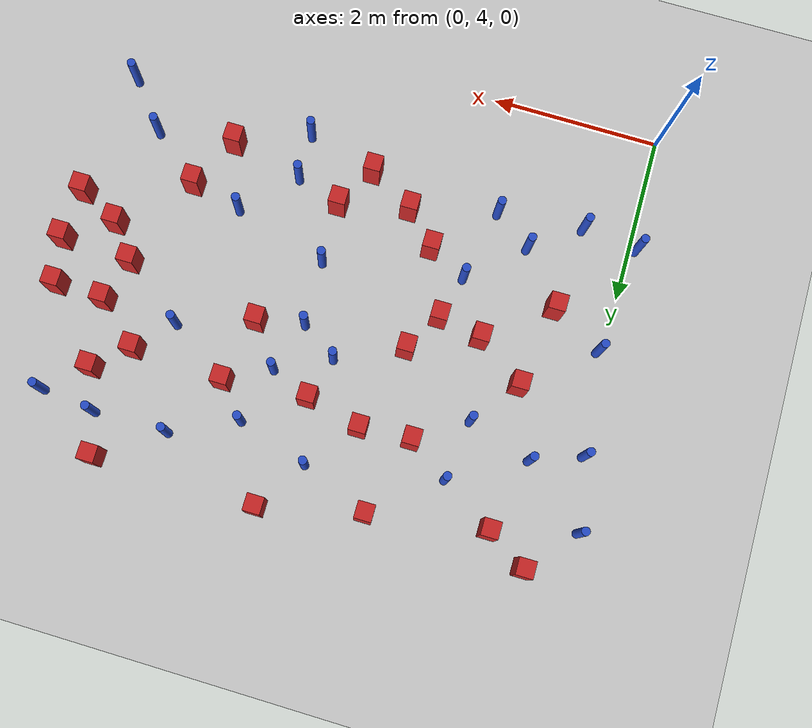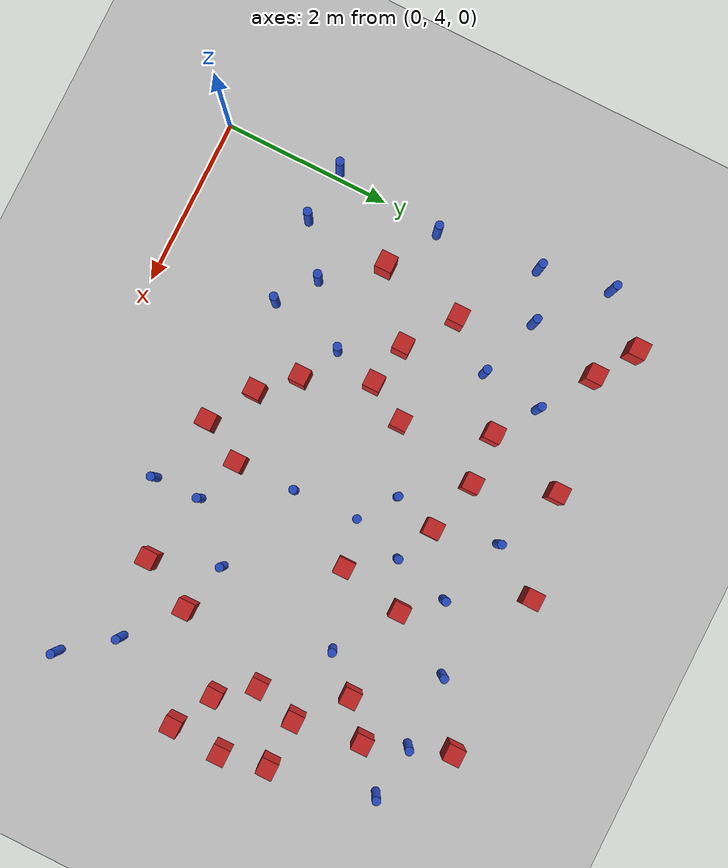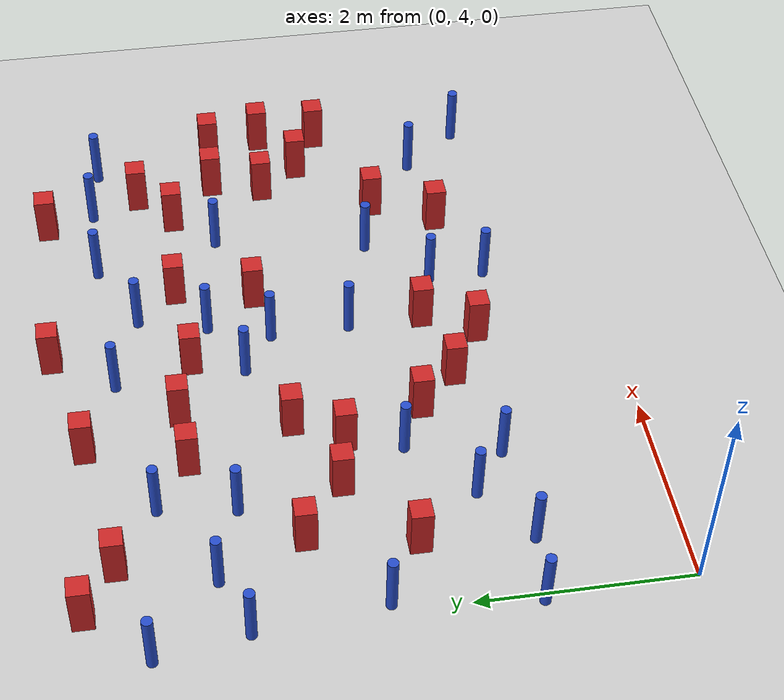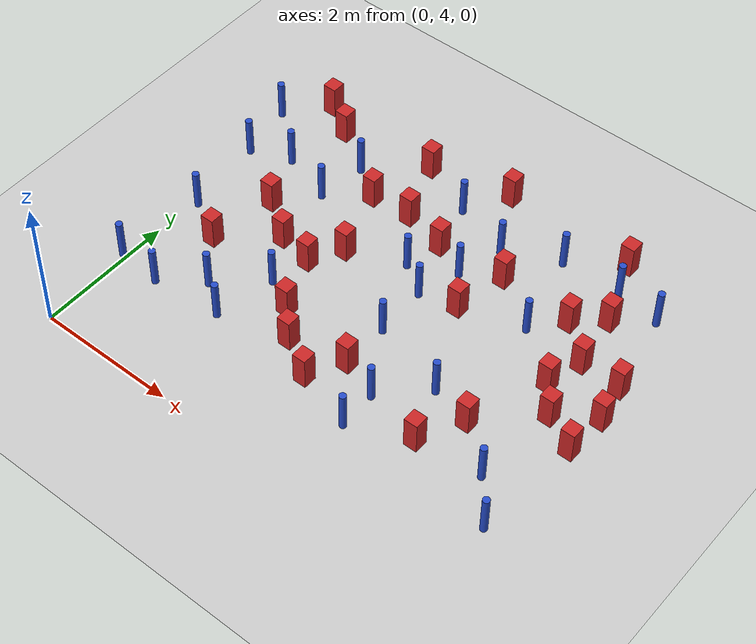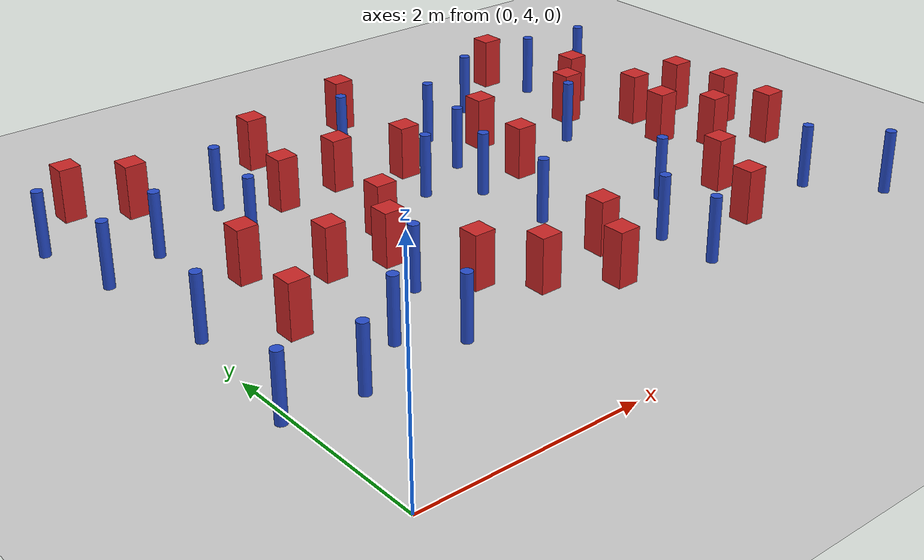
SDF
<sdf version="1.6">
 <world name="default">
  <model name="ground_plane">
   <static>1</static>
   <link name="link">
    <collision name="collision">
     <geometry><plane><normal>0 0 1</normal><size>100 100</size></plane></geometry>
     <surface><friction><ode><mu>100</mu><mu2>50</mu2></ode></friction></surface>
    </collision>
    <visual name="visual">
     <cast_shadows>0</cast_shadows>
     <geometry><plane><normal>0 0 1</normal><size>100 100</size></plane></geometry>
     <material>
      <ambient>1.0 1.0 1.0 1.0</ambient>
      <diffuse>0.8 0.8 0.8 1.0</diffuse>
      <specular>0.01 0.01 0.01 1.000000</specular>
     </material>
    </visual>
   </link>
  </model>
  <model name="pole_obstacle0">
   <static>true</static>
   <pose>5.76128852781 5.56607418223 7.38925637345e-09 -8.47170692796e-08 1.24976764786e-08 -1.74513093032e-07</pose>
   <link name="link">
    <pose>0 0 0.3 0 -0 0</pose>
    <inertial>
     <mass>1</mass>
     <inertia><ixx>0.145833</ixx><ixy>0</ixy><ixz>0</ixz><iyy>0.145833</iyy><iyz>0</iyz><izz>0.125</izz></inertia>
    </inertial>
    <collision name="collision">
     <geometry><cylinder><radius>0.05</radius><length>.6</length></cylinder></geometry>
    </collision>
    <visual name="visual">
     <geometry><cylinder><radius>0.05</radius><length>.6</length></cylinder></geometry>
     <material>
      <script><name>Gazebo/Blue</name><uri>file://media/materials/scripts/gazebo.material</uri></script>
     </material>
    </visual>
   </link>
  </model>
  <model name="pole_obstacle2">
   <static>true</static>
   <pose>0.0751189451723 6.69348405141 7.38925637345e-09 -8.47170692799e-08 1.24976765062e-08 -1.74513093018e-07</pose>
   <link name="link">
    <pose>0 0 0.3 0 -0 0</pose>
    <inertial>
     <mass>1</mass>
     <inertia><ixx>0.145833</ixx><ixy>0</ixy><ixz>0</ixz><iyy>0.145833</iyy><iyz>0</iyz><izz>0.125</izz></inertia>
    </inertial>
    <collision name="collision">
     <geometry><cylinder><radius>0.05</radius><length>.6</length></cylinder></geometry>
    </collision>
    <visual name="visual">
     <geometry><cylinder><radius>0.05</radius><length>.6</length></cylinder></geometry>
     <material>
      <script><name>Gazebo/Blue</name><uri>file://media/materials/scripts/gazebo.material</uri></script>
     </material>
    </visual>
   </link>
  </model>
  <model name="square_post_obstacle7">
   <static>true</static>
   <pose>4.10316415654 8.22295791466 1.91545236811e-07 -7.35059704564e-06 1.12565212e-07 2.39332434364e-05</pose>
   <link name="link">
    <pose>0 0 0.25 0 -0 0</pose>
    <inertial>
     <mass>100</mass>
     <inertia>
      <ixx>0.166667</ixx>
      <ixy>0</ixy>
      <ixz>0</ixz>
      <iyy>0.166667</iyy>
      <iyz>0</iyz>
      <izz>0.166667</izz>
     </inertia>
    </inertial>
    <collision name="collision"><geometry><box><size>.2 .2 .5</size></box></geometry></collision>
    <visual name="visual">
     <geometry><box><size>.2 .2 .5</size></box></geometry>
     <material>
      <script><name>Gazebo/Red</name><uri>file://media/materials/scripts/gazebo.material</uri></script>
     </material>
    </visual>
   </link>
  </model>
  <model name="square_post_obstacle9">
   <static>true</static>
   <pose>4.83220556354 5.45083646995 1.91545236811e-07 -7.35059704564e-06 1.12565212e-07 2.39332434364e-05</pose>
   <link name="link">
    <pose>0 0 0.25 0 -0 0</pose>
    <inertial>
     <mass>100</mass>
     <inertia>
      <ixx>0.166667</ixx>
      <ixy>0</ixy>
      <ixz>0</ixz>
      <iyy>0.166667</iyy>
      <iyz>0</iyz>
      <izz>0.166667</izz>
     </inertia>
    </inertial>
    <collision name="collision"><geometry><box><size>.2 .2 .5</size></box></geometry></collision>
    <visual name="visual">
     <geometry><box><size>.2 .2 .5</size></box></geometry>
     <material>
      <script><name>Gazebo/Red</name><uri>file://media/materials/scripts/gazebo.material</uri></script>
     </material>
    </visual>
   </link>
  </model>
  <model name="square_post_obstacle15">
   <static>true</static>
   <pose>2.46411569563 8.30953991213 1.91545236811e-07 -7.35059704564e-06 1.12565212e-07 2.39332434364e-05</pose>
   <link name="link">
    <pose>0 0 0.25 0 -0 0</pose>
    <inertial>
     <mass>100</mass>
     <inertia>
      <ixx>0.166667</ixx>
      <ixy>0</ixy>
      <ixz>0</ixz>
      <iyy>0.166667</iyy>
      <iyz>0</iyz>
      <izz>0.166667</izz>
     </inertia>
    </inertial>
    <collision name="collision"><geometry><box><size>.2 .2 .5</size></box></geometry></collision>
    <visual name="visual">
     <geometry><box><size>.2 .2 .5</size></box></geometry>
     <material>
      <script><name>Gazebo/Red</name><uri>file://media/materials/scripts/gazebo.material</uri></script>
     </material>
    </visual>
   </link>
  </model>
  <model name="square_post_obstacle16">
   <static>true</static>
   <pose>6.3573693927 6.53001208499 1.91545236811e-07 -7.35059704564e-06 1.12565212e-07 2.39332434364e-05</pose>
   <link name="link">
    <pose>0 0 0.25 0 -0 0</pose>
    <inertial>
     <mass>100</mass>
     <inertia>
      <ixx>0.166667</ixx>
      <ixy>0</ixy>
      <ixz>0</ixz>
      <iyy>0.166667</iyy>
      <iyz>0</iyz>
      <izz>0.166667</izz>
     </inertia>
    </inertial>
    <collision name="collision"><geometry><box><size>.2 .2 .5</size></box></geometry></collision>
    <visual name="visual">
     <geometry><box><size>.2 .2 .5</size></box></geometry>
     <material>
      <script><name>Gazebo/Red</name><uri>file://media/materials/scripts/gazebo.material</uri></script>
     </material>
    </visual>
   </link>
  </model>
  <model name="square_post_obstacle18">
   <static>true</static>
   <pose>0.291771999807 9.30222031321 1.91545236811e-07 -7.35059704564e-06 1.12565212e-07 2.39332434364e-05</pose>
   <link name="link">
    <pose>0 0 0.25 0 -0 0</pose>
    <inertial>
     <mass>100</mass>
     <inertia>
      <ixx>0.166667</ixx>
      <ixy>0</ixy>
      <ixz>0</ixz>
      <iyy>0.166667</iyy>
      <iyz>0</iyz>
      <izz>0.166667</izz>
     </inertia>
    </inertial>
    <collision name="collision"><geometry><box><size>.2 .2 .5</size></box></geometry></collision>
    <visual name="visual">
     <geometry><box><size>.2 .2 .5</size></box></geometry>
     <material>
      <script><name>Gazebo/Red</name><uri>file://media/materials/scripts/gazebo.material</uri></script>
     </material>
    </visual>
   </link>
  </model>
  <model name="square_post_obstacle31">
   <static>true</static>
   <pose>5.14535601493 6.07199148333 1.91545236811e-07 -7.35059704564e-06 1.12565212e-07 2.39332434364e-05</pose>
   <link name="link">
    <pose>0 0 0.25 0 -0 0</pose>
    <inertial>
     <mass>100</mass>
     <inertia>
      <ixx>0.166667</ixx>
      <ixy>0</ixy>
      <ixz>0</ixz>
      <iyy>0.166667</iyy>
      <iyz>0</iyz>
      <izz>0.166667</izz>
     </inertia>
    </inertial>
    <collision name="collision"><geometry><box><size>.2 .2 .5</size></box></geometry></collision>
    <visual name="visual">
     <geometry><box><size>.2 .2 .5</size></box></geometry>
     <material>
      <script><name>Gazebo/Red</name><uri>file://media/materials/scripts/gazebo.material</uri></script>
     </material>
    </visual>
   </link>
  </model>
  <model name="pole_obstacle27">
   <static>true</static>
   <pose>3.42169772487 6.56206708569 7.38925637345e-09 -8.47170692798e-08 1.24976765033e-08 -1.74513093019e-07</pose>
   <link name="link">
    <pose>0 0 0.3 0 -0 0</pose>
    <inertial>
     <mass>1</mass>
     <inertia><ixx>0.145833</ixx><ixy>0</ixy><ixz>0</ixz><iyy>0.145833</iyy><iyz>0</iyz><izz>0.125</izz></inertia>
    </inertial>
    <collision name="collision">
     <geometry><cylinder><radius>0.05</radius><length>.6</length></cylinder></geometry>
    </collision>
    <visual name="visual">
     <geometry><cylinder><radius>0.05</radius><length>.6</length></cylinder></geometry>
     <material>
      <script><name>Gazebo/Blue</name><uri>file://media/materials/scripts/gazebo.material</uri></script>
     </material>
    </visual>
   </link>
  </model>
  <model name="square_post_obstacle34">
   <static>true</static>
   <pose>6.29326271975 7.68353820615 1.91545236811e-07 -7.35059704564e-06 1.12565212e-07 2.39332434364e-05</pose>
   <link name="link">
    <pose>0 0 0.25 0 -0 0</pose>
    <inertial>
     <mass>100</mass>
     <inertia>
      <ixx>0.166667</ixx>
      <ixy>0</ixy>
      <ixz>0</ixz>
      <iyy>0.166667</iyy>
      <iyz>0</iyz>
      <izz>0.166667</izz>
     </inertia>
    </inertial>
    <collision name="collision"><geometry><box><size>.2 .2 .5</size></box></geometry></collision>
    <visual name="visual">
     <geometry><box><size>.2 .2 .5</size></box></geometry>
     <material>
      <script><name>Gazebo/Red</name><uri>file://media/materials/scripts/gazebo.material</uri></script>
     </material>
    </visual>
   </link>
  </model>
  <model name="pole_obstacle30">
   <static>true</static>
   <pose>-0.0682992994698 5.38502403464 7.38925637345e-09 -8.471706928e-08 1.24976765084e-08 -1.74513093017e-07</pose>
   <link name="link">
    <pose>0 0 0.3 0 -0 0</pose>
    <inertial>
     <mass>1</mass>
     <inertia><ixx>0.145833</ixx><ixy>0</ixy><ixz>0</ixz><iyy>0.145833</iyy><iyz>0</iyz><izz>0.125</izz></inertia>
    </inertial>
    <collision name="collision">
     <geometry><cylinder><radius>0.05</radius><length>.6</length></cylinder></geometry>
    </collision>
    <visual name="visual">
     <geometry><cylinder><radius>0.05</radius><length>.6</length></cylinder></geometry>
     <material>
      <script><name>Gazebo/Blue</name><uri>file://media/materials/scripts/gazebo.material</uri></script>
     </material>
    </visual>
   </link>
  </model>
  <model name="pole_obstacle44">
   <static>true</static>
   <pose>3.99302795289 5.09321217439 7.38925637345e-09 -8.47170692798e-08 1.24976764915e-08 -1.74513093026e-07</pose>
   <link name="link">
    <pose>0 0 0.3 0 -0 0</pose>
    <inertial>
     <mass>1</mass>
     <inertia><ixx>0.145833</ixx><ixy>0</ixy><ixz>0</ixz><iyy>0.145833</iyy><iyz>0</iyz><izz>0.125</izz></inertia>
    </inertial>
    <collision name="collision">
     <geometry><cylinder><radius>0.05</radius><length>.6</length></cylinder></geometry>
    </collision>
    <visual name="visual">
     <geometry><cylinder><radius>0.05</radius><length>.6</length></cylinder></geometry>
     <material>
      <script><name>Gazebo/Blue</name><uri>file://media/materials/scripts/gazebo.material</uri></script>
     </material>
    </visual>
   </link>
  </model>
  <model name="square_post_obstacle44">
   <static>true</static>
   <pose>2.24640377928 6.04788490273 1.91545236811e-07 -7.35059704564e-06 1.12565212e-07 2.39332434364e-05</pose>
   <link name="link">
    <pose>0 0 0.25 0 -0 0</pose>
    <inertial>
     <mass>100</mass>
     <inertia>
      <ixx>0.166667</ixx>
      <ixy>0</ixy>
      <ixz>0</ixz>
      <iyy>0.166667</iyy>
      <iyz>0</iyz>
      <izz>0.166667</izz>
     </inertia>
    </inertial>
    <collision name="collision"><geometry><box><size>.2 .2 .5</size></box></geometry></collision>
    <visual name="visual">
     <geometry><box><size>.2 .2 .5</size></box></geometry>
     <material>
      <script><name>Gazebo/Red</name><uri>file://media/materials/scripts/gazebo.material</uri></script>
     </material>
    </visual>
   </link>
  </model>
  <model name="pole_obstacle52">
   <static>true</static>
   <pose>-0.211108417461 8.75379830106 7.38925637345e-09 -8.47170692796e-08 1.24976764767e-08 -1.74513093034e-07</pose>
   <link name="link">
    <pose>0 0 0.3 0 -0 0</pose>
    <inertial>
     <mass>1</mass>
     <inertia><ixx>0.145833</ixx><ixy>0</ixy><ixz>0</ixz><iyy>0.145833</iyy><iyz>0</iyz><izz>0.125</izz></inertia>
    </inertial>
    <collision name="collision">
     <geometry><cylinder><radius>0.05</radius><length>.6</length></cylinder></geometry>
    </collision>
    <visual name="visual">
     <geometry><cylinder><radius>0.05</radius><length>.6</length></cylinder></geometry>
     <material>
      <script><name>Gazebo/Blue</name><uri>file://media/materials/scripts/gazebo.material</uri></script>
     </material>
    </visual>
   </link>
  </model>
  <model name="pole_obstacle68">
   <static>true</static>
   <pose>6.22227778418 5.00015274147 7.38925637345e-09 -8.47170692796e-08 1.24976764786e-08 -1.74513093032e-07</pose>
   <link name="link">
    <pose>0 0 0.3 0 -0 0</pose>
    <inertial>
     <mass>1</mass>
     <inertia><ixx>0.145833</ixx><ixy>0</ixy><ixz>0</ixz><iyy>0.145833</iyy><iyz>0</iyz><izz>0.125</izz></inertia>
    </inertial>
    <collision name="collision">
     <geometry><cylinder><radius>0.05</radius><length>.6</length></cylinder></geometry>
    </collision>
    <visual name="visual">
     <geometry><cylinder><radius>0.05</radius><length>.6</length></cylinder></geometry>
     <material>
      <script><name>Gazebo/Blue</name><uri>file://media/materials/scripts/gazebo.material</uri></script>
     </material>
    </visual>
   </link>
  </model>
  <model name="pole_obstacle69">
   <static>true</static>
   <pose>1.60723801786 5.40578053974 7.38925637345e-09 -8.47170692799e-08 1.24976765033e-08 -1.74513093018e-07</pose>
   <link name="link">
    <pose>0 0 0.3 0 -0 0</pose>
    <inertial>
     <mass>1</mass>
     <inertia><ixx>0.145833</ixx><ixy>0</ixy><ixz>0</ixz><iyy>0.145833</iyy><iyz>0</iyz><izz>0.125</izz></inertia>
    </inertial>
    <collision name="collision">
     <geometry><cylinder><radius>0.05</radius><length>.6</length></cylinder></geometry>
    </collision>
    <visual name="visual">
     <geometry><cylinder><radius>0.05</radius><length>.6</length></cylinder></geometry>
     <material>
      <script><name>Gazebo/Blue</name><uri>file://media/materials/scripts/gazebo.material</uri></script>
     </material>
    </visual>
   </link>
  </model>
  <model name="pole_obstacle72">
   <static>true</static>
   <pose>1.16589366603 5.72822567329 7.38925637345e-09 -8.47170692799e-08 1.24976765033e-08 -1.74513093018e-07</pose>
   <link name="link">
    <pose>0 0 0.3 0 -0 0</pose>
    <inertial>
     <mass>1</mass>
     <inertia><ixx>0.145833</ixx><ixy>0</ixy><ixz>0</ixz><iyy>0.145833</iyy><iyz>0</iyz><izz>0.125</izz></inertia>
    </inertial>
    <collision name="collision">
     <geometry><cylinder><radius>0.05</radius><length>.6</length></cylinder></geometry>
    </collision>
    <visual name="visual">
     <geometry><cylinder><radius>0.05</radius><length>.6</length></cylinder></geometry>
     <material>
      <script><name>Gazebo/Blue</name><uri>file://media/materials/scripts/gazebo.material</uri></script>
     </material>
    </visual>
   </link>
  </model>
  <model name="square_post_obstacle77">
   <static>true</static>
   <pose>0.85280260007 7.3304968766 1.91545236811e-07 -7.35059704564e-06 1.12565212e-07 2.39332434364e-05</pose>
   <link name="link">
    <pose>0 0 0.25 0 -0 0</pose>
    <inertial>
     <mass>100</mass>
     <inertia>
      <ixx>0.166667</ixx>
      <ixy>0</ixy>
      <ixz>0</ixz>
      <iyy>0.166667</iyy>
      <iyz>0</iyz>
      <izz>0.166667</izz>
     </inertia>
    </inertial>
    <collision name="collision"><geometry><box><size>.2 .2 .5</size></box></geometry></collision>
    <visual name="visual">
     <geometry><box><size>.2 .2 .5</size></box></geometry>
     <material>
      <script><name>Gazebo/Red</name><uri>file://media/materials/scripts/gazebo.material</uri></script>
     </material>
    </visual>
   </link>
  </model>
  <model name="pole_obstacle82">
   <static>true</static>
   <pose>4.53029374698 8.97616509681 7.38925637345e-09 -8.471706928e-08 1.24976765081e-08 -1.74513093015e-07</pose>
   <link name="link">
    <pose>0 0 0.3 0 -0 0</pose>
    <inertial>
     <mass>1</mass>
     <inertia><ixx>0.145833</ixx><ixy>0</ixy><ixz>0</ixz><iyy>0.145833</iyy><iyz>0</iyz><izz>0.125</izz></inertia>
    </inertial>
    <collision name="collision">
     <geometry><cylinder><radius>0.05</radius><length>.6</length></cylinder></geometry>
    </collision>
    <visual name="visual">
     <geometry><cylinder><radius>0.05</radius><length>.6</length></cylinder></geometry>
     <material>
      <script><name>Gazebo/Blue</name><uri>file://media/materials/scripts/gazebo.material</uri></script>
     </material>
    </visual>
   </link>
  </model>
  <model name="pole_obstacle96">
   <static>true</static>
   <pose>3.97979917331 5.65232760509 7.38925637345e-09 -8.47170692798e-08 1.24976764915e-08 -1.74513093026e-07</pose>
   <link name="link">
    <pose>0 0 0.3 0 -0 0</pose>
    <inertial>
     <mass>1</mass>
     <inertia><ixx>0.145833</ixx><ixy>0</ixy><ixz>0</ixz><iyy>0.145833</iyy><iyz>0</iyz><izz>0.125</izz></inertia>
    </inertial>
    <collision name="collision">
     <geometry><cylinder><radius>0.05</radius><length>.6</length></cylinder></geometry>
    </collision>
    <visual name="visual">
     <geometry><cylinder><radius>0.05</radius><length>.6</length></cylinder></geometry>
     <material>
      <script><name>Gazebo/Blue</name><uri>file://media/materials/scripts/gazebo.material</uri></script>
     </material>
    </visual>
   </link>
  </model>
  <model name="square_post_obstacle87">
   <static>true</static>
   <pose>0.682684380117 6.34291749218 1.91545236811e-07 -7.35059704564e-06 1.12565212e-07 2.39332434364e-05</pose>
   <link name="link">
    <pose>0 0 0.25 0 -0 0</pose>
    <inertial>
     <mass>100</mass>
     <inertia>
      <ixx>0.166667</ixx>
      <ixy>0</ixy>
      <ixz>0</ixz>
      <iyy>0.166667</iyy>
      <iyz>0</iyz>
      <izz>0.166667</izz>
     </inertia>
    </inertial>
    <collision name="collision"><geometry><box><size>.2 .2 .5</size></box></geometry></collision>
    <visual name="visual">
     <geometry><box><size>.2 .2 .5</size></box></geometry>
     <material>
      <script><name>Gazebo/Red</name><uri>file://media/materials/scripts/gazebo.material</uri></script>
     </material>
    </visual>
   </link>
  </model>
  <model name="pole_obstacle100">
   <static>true</static>
   <pose>3.3953193528 7.33643980055 7.38925637345e-09 -8.47170692798e-08 1.24976765033e-08 -1.74513093019e-07</pose>
   <link name="link">
    <pose>0 0 0.3 0 -0 0</pose>
    <inertial>
     <mass>1</mass>
     <inertia><ixx>0.145833</ixx><ixy>0</ixy><ixz>0</ixz><iyy>0.145833</iyy><iyz>0</iyz><izz>0.125</izz></inertia>
    </inertial>
    <collision name="collision">
     <geometry><cylinder><radius>0.05</radius><length>.6</length></cylinder></geometry>
    </collision>
    <visual name="visual">
     <geometry><cylinder><radius>0.05</radius><length>.6</length></cylinder></geometry>
     <material>
      <script><name>Gazebo/Blue</name><uri>file://media/materials/scripts/gazebo.material</uri></script>
     </material>
    </visual>
   </link>
  </model>
  <model name="pole_obstacle103">
   <static>true</static>
   <pose>6.04791954776 8.90420454646 7.38925637345e-09 -8.471706928e-08 1.24976765081e-08 -1.74513093015e-07</pose>
   <link name="link">
    <pose>0 0 0.3 0 -0 0</pose>
    <inertial>
     <mass>1</mass>
     <inertia><ixx>0.145833</ixx><ixy>0</ixy><ixz>0</ixz><iyy>0.145833</iyy><iyz>0</iyz><izz>0.125</izz></inertia>
    </inertial>
    <collision name="collision">
     <geometry><cylinder><radius>0.05</radius><length>.6</length></cylinder></geometry>
    </collision>
    <visual name="visual">
     <geometry><cylinder><radius>0.05</radius><length>.6</length></cylinder></geometry>
     <material>
      <script><name>Gazebo/Blue</name><uri>file://media/materials/scripts/gazebo.material</uri></script>
     </material>
    </visual>
   </link>
  </model>
  <model name="square_post_obstacle94">
   <static>true</static>
   <pose>3.94307932074 7.45140852487 1.91545236811e-07 -7.35059704564e-06 1.12565212e-07 2.39332434364e-05</pose>
   <link name="link">
    <pose>0 0 0.25 0 -0 0</pose>
    <inertial>
     <mass>100</mass>
     <inertia>
      <ixx>0.166667</ixx>
      <ixy>0</ixy>
      <ixz>0</ixz>
      <iyy>0.166667</iyy>
      <iyz>0</iyz>
      <izz>0.166667</izz>
     </inertia>
    </inertial>
    <collision name="collision"><geometry><box><size>.2 .2 .5</size></box></geometry></collision>
    <visual name="visual">
     <geometry><box><size>.2 .2 .5</size></box></geometry>
     <material>
      <script><name>Gazebo/Red</name><uri>file://media/materials/scripts/gazebo.material</uri></script>
     </material>
    </visual>
   </link>
  </model>
  <model name="square_post_obstacle106">
   <static>true</static>
   <pose>2.19846030514 7.28143949949 1.91545236811e-07 -7.35059704564e-06 1.12565212e-07 2.39332434364e-05</pose>
   <link name="link">
    <pose>0 0 0.25 0 -0 0</pose>
    <inertial>
     <mass>100</mass>
     <inertia>
      <ixx>0.166667</ixx>
      <ixy>0</ixy>
      <ixz>0</ixz>
      <iyy>0.166667</iyy>
      <iyz>0</iyz>
      <izz>0.166667</izz>
     </inertia>
    </inertial>
    <collision name="collision"><geometry><box><size>.2 .2 .5</size></box></geometry></collision>
    <visual name="visual">
     <geometry><box><size>.2 .2 .5</size></box></geometry>
     <material>
      <script><name>Gazebo/Red</name><uri>file://media/materials/scripts/gazebo.material</uri></script>
     </material>
    </visual>
   </link>
  </model>
  <model name="pole_obstacle132">
   <static>true</static>
   <pose>4.5471626173 6.22594026169 7.38925637345e-09 -8.47170692796e-08 1.24976764786e-08 -1.74513093032e-07</pose>
   <link name="link">
    <pose>0 0 0.3 0 -0 0</pose>
    <inertial>
     <mass>1</mass>
     <inertia><ixx>0.145833</ixx><ixy>0</ixy><ixz>0</ixz><iyy>0.145833</iyy><iyz>0</iyz><izz>0.125</izz></inertia>
    </inertial>
    <collision name="collision">
     <geometry><cylinder><radius>0.05</radius><length>.6</length></cylinder></geometry>
    </collision>
    <visual name="visual">
     <geometry><cylinder><radius>0.05</radius><length>.6</length></cylinder></geometry>
     <material>
      <script><name>Gazebo/Blue</name><uri>file://media/materials/scripts/gazebo.material</uri></script>
     </material>
    </visual>
   </link>
  </model>
  <model name="square_post_obstacle115">
   <static>true</static>
   <pose>3.11151601661 8.14394241315 1.91545236811e-07 -7.35059704564e-06 1.12565212e-07 2.39332434364e-05</pose>
   <link name="link">
    <pose>0 0 0.25 0 -0 0</pose>
    <inertial>
     <mass>100</mass>
     <inertia>
      <ixx>0.166667</ixx>
      <ixy>0</ixy>
      <ixz>0</ixz>
      <iyy>0.166667</iyy>
      <iyz>0</iyz>
      <izz>0.166667</izz>
     </inertia>
    </inertial>
    <collision name="collision"><geometry><box><size>.2 .2 .5</size></box></geometry></collision>
    <visual name="visual">
     <geometry><box><size>.2 .2 .5</size></box></geometry>
     <material>
      <script><name>Gazebo/Red</name><uri>file://media/materials/scripts/gazebo.material</uri></script>
     </material>
    </visual>
   </link>
  </model>
  <model name="pole_obstacle139">
   <static>true</static>
   <pose>0.519294932014 8.12801999127 7.38925637345e-09 -8.47170692797e-08 1.24976764765e-08 -1.74513093034e-07</pose>
   <link name="link">
    <pose>0 0 0.3 0 -0 0</pose>
    <inertial>
     <mass>1</mass>
     <inertia><ixx>0.145833</ixx><ixy>0</ixy><ixz>0</ixz><iyy>0.145833</iyy><iyz>0</iyz><izz>0.125</izz></inertia>
    </inertial>
    <collision name="collision">
     <geometry><cylinder><radius>0.05</radius><length>.6</length></cylinder></geometry>
    </collision>
    <visual name="visual">
     <geometry><cylinder><radius>0.05</radius><length>.6</length></cylinder></geometry>
     <material>
      <script><name>Gazebo/Blue</name><uri>file://media/materials/scripts/gazebo.material</uri></script>
     </material>
    </visual>
   </link>
  </model>
  <model name="square_post_obstacle129">
   <static>true</static>
   <pose>5.70563237857 7.70838193958 1.91545236811e-07 -7.35059704564e-06 1.12565212e-07 2.39332434364e-05</pose>
   <link name="link">
    <pose>0 0 0.25 0 -0 0</pose>
    <inertial>
     <mass>100</mass>
     <inertia>
      <ixx>0.166667</ixx>
      <ixy>0</ixy>
      <ixz>0</ixz>
      <iyy>0.166667</iyy>
      <iyz>0</iyz>
      <izz>0.166667</izz>
     </inertia>
    </inertial>
    <collision name="collision"><geometry><box><size>.2 .2 .5</size></box></geometry></collision>
    <visual name="visual">
     <geometry><box><size>.2 .2 .5</size></box></geometry>
     <material>
      <script><name>Gazebo/Red</name><uri>file://media/materials/scripts/gazebo.material</uri></script>
     </material>
    </visual>
   </link>
  </model>
  <model name="square_post_obstacle133">
   <static>true</static>
   <pose>3.43366580866 5.83981058334 1.91545236811e-07 -7.35059704564e-06 1.12565212e-07 2.39332434364e-05</pose>
   <link name="link">
    <pose>0 0 0.25 0 -0 0</pose>
    <inertial>
     <mass>100</mass>
     <inertia>
      <ixx>0.166667</ixx>
      <ixy>0</ixy>
      <ixz>0</ixz>
      <iyy>0.166667</iyy>
      <iyz>0</iyz>
      <izz>0.166667</izz>
     </inertia>
    </inertial>
    <collision name="collision"><geometry><box><size>.2 .2 .5</size></box></geometry></collision>
    <visual name="visual">
     <geometry><box><size>.2 .2 .5</size></box></geometry>
     <material>
      <script><name>Gazebo/Red</name><uri>file://media/materials/scripts/gazebo.material</uri></script>
     </material>
    </visual>
   </link>
  </model>
  <model name="pole_obstacle144">
   <static>true</static>
   <pose>-0.0593687090608 7.90791928932 7.38925637345e-09 -8.47170692799e-08 1.24976765086e-08 -1.74513093017e-07</pose>
   <link name="link">
    <pose>0 0 0.3 0 -0 0</pose>
    <inertial>
     <mass>1</mass>
     <inertia><ixx>0.145833</ixx><ixy>0</ixy><ixz>0</ixz><iyy>0.145833</iyy><iyz>0</iyz><izz>0.125</izz></inertia>
    </inertial>
    <collision name="collision">
     <geometry><cylinder><radius>0.05</radius><length>.6</length></cylinder></geometry>
    </collision>
    <visual name="visual">
     <geometry><cylinder><radius>0.05</radius><length>.6</length></cylinder></geometry>
     <material>
      <script><name>Gazebo/Blue</name><uri>file://media/materials/scripts/gazebo.material</uri></script>
     </material>
    </visual>
   </link>
  </model>
  <model name="square_post_obstacle134">
   <static>true</static>
   <pose>1.93615883682 6.81960525769 1.91545236811e-07 -7.35059704564e-06 1.12565212e-07 2.39332434364e-05</pose>
   <link name="link">
    <pose>0 0 0.25 0 -0 0</pose>
    <inertial>
     <mass>100</mass>
     <inertia>
      <ixx>0.166667</ixx>
      <ixy>0</ixy>
      <ixz>0</ixz>
      <iyy>0.166667</iyy>
      <iyz>0</iyz>
      <izz>0.166667</izz>
     </inertia>
    </inertial>
    <collision name="collision"><geometry><box><size>.2 .2 .5</size></box></geometry></collision>
    <visual name="visual">
     <geometry><box><size>.2 .2 .5</size></box></geometry>
     <material>
      <script><name>Gazebo/Red</name><uri>file://media/materials/scripts/gazebo.material</uri></script>
     </material>
    </visual>
   </link>
  </model>
  <model name="square_post_obstacle137">
   <static>true</static>
   <pose>3.31526058467 9.48041789392 1.91545236811e-07 -7.35059704564e-06 1.12565212e-07 2.39332434364e-05</pose>
   <link name="link">
    <pose>0 0 0.25 0 -0 0</pose>
    <inertial>
     <mass>100</mass>
     <inertia>
      <ixx>0.166667</ixx>
      <ixy>0</ixy>
      <ixz>0</ixz>
      <iyy>0.166667</iyy>
      <iyz>0</iyz>
      <izz>0.166667</izz>
     </inertia>
    </inertial>
    <collision name="collision"><geometry><box><size>.2 .2 .5</size></box></geometry></collision>
    <visual name="visual">
     <geometry><box><size>.2 .2 .5</size></box></geometry>
     <material>
      <script><name>Gazebo/Red</name><uri>file://media/materials/scripts/gazebo.material</uri></script>
     </material>
    </visual>
   </link>
  </model>
  <model name="square_post_obstacle140">
   <static>true</static>
   <pose>2.61641990499 5.66529505028 1.91545236811e-07 -7.35059704564e-06 1.12565212e-07 2.39332434364e-05</pose>
   <link name="link">
    <pose>0 0 0.25 0 -0 0</pose>
    <inertial>
     <mass>100</mass>
     <inertia>
      <ixx>0.166667</ixx>
      <ixy>0</ixy>
      <ixz>0</ixz>
      <iyy>0.166667</iyy>
      <iyz>0</iyz>
      <izz>0.166667</izz>
     </inertia>
    </inertial>
    <collision name="collision"><geometry><box><size>.2 .2 .5</size></box></geometry></collision>
    <visual name="visual">
     <geometry><box><size>.2 .2 .5</size></box></geometry>
     <material>
      <script><name>Gazebo/Red</name><uri>file://media/materials/scripts/gazebo.material</uri></script>
     </material>
    </visual>
   </link>
  </model>
  <model name="pole_obstacle149">
   <static>true</static>
   <pose>1.79020988053 6.28692920211 7.38925637345e-09 -8.47170692799e-08 1.24976765033e-08 -1.74513093018e-07</pose>
   <link name="link">
    <pose>0 0 0.3 0 -0 0</pose>
    <inertial>
     <mass>1</mass>
     <inertia><ixx>0.145833</ixx><ixy>0</ixy><ixz>0</ixz><iyy>0.145833</iyy><iyz>0</iyz><izz>0.125</izz></inertia>
    </inertial>
    <collision name="collision">
     <geometry><cylinder><radius>0.05</radius><length>.6</length></cylinder></geometry>
    </collision>
    <visual name="visual">
     <geometry><cylinder><radius>0.05</radius><length>.6</length></cylinder></geometry>
     <material>
      <script><name>Gazebo/Blue</name><uri>file://media/materials/scripts/gazebo.material</uri></script>
     </material>
    </visual>
   </link>
  </model>
  <model name="pole_obstacle154">
   <static>true</static>
   <pose>3.76764204558 8.61747934037 7.38925637345e-09 -8.47170692793e-08 1.24976764408e-08 -1.74513093041e-07</pose>
   <link name="link">
    <pose>0 0 0.3 0 -0 0</pose>
    <inertial>
     <mass>1</mass>
     <inertia><ixx>0.145833</ixx><ixy>0</ixy><ixz>0</ixz><iyy>0.145833</iyy><iyz>0</iyz><izz>0.125</izz></inertia>
    </inertial>
    <collision name="collision">
     <geometry><cylinder><radius>0.05</radius><length>.6</length></cylinder></geometry>
    </collision>
    <visual name="visual">
     <geometry><cylinder><radius>0.05</radius><length>.6</length></cylinder></geometry>
     <material>
      <script><name>Gazebo/Blue</name><uri>file://media/materials/scripts/gazebo.material</uri></script>
     </material>
    </visual>
   </link>
  </model>
  <model name="square_post_obstacle160">
   <static>true</static>
   <pose>5.23786854367 9.45898043772 1.91545236811e-07 -7.35059704564e-06 1.12565212e-07 2.39332434364e-05</pose>
   <link name="link">
    <pose>0 0 0.25 0 -0 0</pose>
    <inertial>
     <mass>100</mass>
     <inertia>
      <ixx>0.166667</ixx>
      <ixy>0</ixy>
      <ixz>0</ixz>
      <iyy>0.166667</iyy>
      <iyz>0</iyz>
      <izz>0.166667</izz>
     </inertia>
    </inertial>
    <collision name="collision"><geometry><box><size>.2 .2 .5</size></box></geometry></collision>
    <visual name="visual">
     <geometry><box><size>.2 .2 .5</size></box></geometry>
     <material>
      <script><name>Gazebo/Red</name><uri>file://media/materials/scripts/gazebo.material</uri></script>
     </material>
    </visual>
   </link>
  </model>
  <model name="pole_obstacle168">
   <static>true</static>
   <pose>5.4042828332 8.98473060773 7.38925637345e-09 -8.471706928e-08 1.24976765081e-08 -1.74513093015e-07</pose>
   <link name="link">
    <pose>0 0 0.3 0 -0 0</pose>
    <inertial>
     <mass>1</mass>
     <inertia><ixx>0.145833</ixx><ixy>0</ixy><ixz>0</ixz><iyy>0.145833</iyy><iyz>0</iyz><izz>0.125</izz></inertia>
    </inertial>
    <collision name="collision">
     <geometry><cylinder><radius>0.05</radius><length>.6</length></cylinder></geometry>
    </collision>
    <visual name="visual">
     <geometry><cylinder><radius>0.05</radius><length>.6</length></cylinder></geometry>
     <material>
      <script><name>Gazebo/Blue</name><uri>file://media/materials/scripts/gazebo.material</uri></script>
     </material>
    </visual>
   </link>
  </model>
  <model name="pole_obstacle171">
   <static>true</static>
   <pose>1.37204413449 8.60377378565 7.38925637345e-09 -8.47170692798e-08 1.24976764881e-08 -1.74513093027e-07</pose>
   <link name="link">
    <pose>0 0 0.3 0 -0 0</pose>
    <inertial>
     <mass>1</mass>
     <inertia><ixx>0.145833</ixx><ixy>0</ixy><ixz>0</ixz><iyy>0.145833</iyy><iyz>0</iyz><izz>0.125</izz></inertia>
    </inertial>
    <collision name="collision">
     <geometry><cylinder><radius>0.05</radius><length>.6</length></cylinder></geometry>
    </collision>
    <visual name="visual">
     <geometry><cylinder><radius>0.05</radius><length>.6</length></cylinder></geometry>
     <material>
      <script><name>Gazebo/Blue</name><uri>file://media/materials/scripts/gazebo.material</uri></script>
     </material>
    </visual>
   </link>
  </model>
  <model name="pole_obstacle176">
   <static>true</static>
   <pose>1.27270523361 7.88354033009 7.38925637345e-09 -8.47170692799e-08 1.24976765033e-08 -1.74513093018e-07</pose>
   <link name="link">
    <pose>0 0 0.3 0 -0 0</pose>
    <inertial>
     <mass>1</mass>
     <inertia><ixx>0.145833</ixx><ixy>0</ixy><ixz>0</ixz><iyy>0.145833</iyy><iyz>0</iyz><izz>0.125</izz></inertia>
    </inertial>
    <collision name="collision">
     <geometry><cylinder><radius>0.05</radius><length>.6</length></cylinder></geometry>
    </collision>
    <visual name="visual">
     <geometry><cylinder><radius>0.05</radius><length>.6</length></cylinder></geometry>
     <material>
      <script><name>Gazebo/Blue</name><uri>file://media/materials/scripts/gazebo.material</uri></script>
     </material>
    </visual>
   </link>
  </model>
  <model name="square_post_obstacle167">
   <static>true</static>
   <pose>0.760586316186 9.00207823131 1.91545236811e-07 -7.35059704564e-06 1.12565212e-07 2.39332434364e-05</pose>
   <link name="link">
    <pose>0 0 0.25 0 -0 0</pose>
    <inertial>
     <mass>100</mass>
     <inertia>
      <ixx>0.166667</ixx>
      <ixy>0</ixy>
      <ixz>0</ixz>
      <iyy>0.166667</iyy>
      <iyz>0</iyz>
      <izz>0.166667</izz>
     </inertia>
    </inertial>
    <collision name="collision"><geometry><box><size>.2 .2 .5</size></box></geometry></collision>
    <visual name="visual">
     <geometry><box><size>.2 .2 .5</size></box></geometry>
     <material>
      <script><name>Gazebo/Red</name><uri>file://media/materials/scripts/gazebo.material</uri></script>
     </material>
    </visual>
   </link>
  </model>
  <model name="pole_obstacle178">
   <static>true</static>
   <pose>2.93144835254 8.88573754031 7.38925637345e-09 -8.47170692793e-08 1.24976764408e-08 -1.74513093041e-07</pose>
   <link name="link">
    <pose>0 0 0.3 0 -0 0</pose>
    <inertial>
     <mass>1</mass>
     <inertia><ixx>0.145833</ixx><ixy>0</ixy><ixz>0</ixz><iyy>0.145833</iyy><iyz>0</iyz><izz>0.125</izz></inertia>
    </inertial>
    <collision name="collision">
     <geometry><cylinder><radius>0.05</radius><length>.6</length></cylinder></geometry>
    </collision>
    <visual name="visual">
     <geometry><cylinder><radius>0.05</radius><length>.6</length></cylinder></geometry>
     <material>
      <script><name>Gazebo/Blue</name><uri>file://media/materials/scripts/gazebo.material</uri></script>
     </material>
    </visual>
   </link>
  </model>
  <model name="square_post_obstacle170">
   <static>true</static>
   <pose>5.19574575321 8.15967933562 1.91545236811e-07 -7.35059704564e-06 1.12565212e-07 2.39332434364e-05</pose>
   <link name="link">
    <pose>0 0 0.25 0 -0 0</pose>
    <inertial>
     <mass>100</mass>
     <inertia>
      <ixx>0.166667</ixx>
      <ixy>0</ixy>
      <ixz>0</ixz>
      <iyy>0.166667</iyy>
      <iyz>0</iyz>
      <izz>0.166667</izz>
     </inertia>
    </inertial>
    <collision name="collision"><geometry><box><size>.2 .2 .5</size></box></geometry></collision>
    <visual name="visual">
     <geometry><box><size>.2 .2 .5</size></box></geometry>
     <material>
      <script><name>Gazebo/Red</name><uri>file://media/materials/scripts/gazebo.material</uri></script>
     </material>
    </visual>
   </link>
  </model>
  <model name="square_post_obstacle178">
   <static>true</static>
   <pose>1.85557884383 8.27626512285 1.91545236811e-07 -7.35059704564e-06 1.12565212e-07 2.39332434364e-05</pose>
   <link name="link">
    <pose>0 0 0.25 0 -0 0</pose>
    <inertial>
     <mass>100</mass>
     <inertia>
      <ixx>0.166667</ixx>
      <ixy>0</ixy>
      <ixz>0</ixz>
      <iyy>0.166667</iyy>
      <iyz>0</iyz>
      <izz>0.166667</izz>
     </inertia>
    </inertial>
    <collision name="collision"><geometry><box><size>.2 .2 .5</size></box></geometry></collision>
    <visual name="visual">
     <geometry><box><size>.2 .2 .5</size></box></geometry>
     <material>
      <script><name>Gazebo/Red</name><uri>file://media/materials/scripts/gazebo.material</uri></script>
     </material>
    </visual>
   </link>
  </model>
  <model name="square_post_obstacle190">
   <static>true</static>
   <pose>5.55809327538 7.19021576448 1.91545236811e-07 -7.35059704564e-06 1.12565212e-07 2.39332434364e-05</pose>
   <link name="link">
    <pose>0 0 0.25 0 -0 0</pose>
    <inertial>
     <mass>100</mass>
     <inertia>
      <ixx>0.166667</ixx>
      <ixy>0</ixy>
      <ixz>0</ixz>
      <iyy>0.166667</iyy>
      <iyz>0</iyz>
      <izz>0.166667</izz>
     </inertia>
    </inertial>
    <collision name="collision"><geometry><box><size>.2 .2 .5</size></box></geometry></collision>
    <visual name="visual">
     <geometry><box><size>.2 .2 .5</size></box></geometry>
     <material>
      <script><name>Gazebo/Red</name><uri>file://media/materials/scripts/gazebo.material</uri></script>
     </material>
    </visual>
   </link>
  </model>
  <model name="square_post_obstacle194">
   <static>true</static>
   <pose>3.15646225264 5.33916087053 1.91545236811e-07 -7.35059704564e-06 1.12565212e-07 2.39332434364e-05</pose>
   <link name="link">
    <pose>0 0 0.25 0 -0 0</pose>
    <inertial>
     <mass>100</mass>
     <inertia>
      <ixx>0.166667</ixx>
      <ixy>0</ixy>
      <ixz>0</ixz>
      <iyy>0.166667</iyy>
      <iyz>0</iyz>
      <izz>0.166667</izz>
     </inertia>
    </inertial>
    <collision name="collision"><geometry><box><size>.2 .2 .5</size></box></geometry></collision>
    <visual name="visual">
     <geometry><box><size>.2 .2 .5</size></box></geometry>
     <material>
      <script><name>Gazebo/Red</name><uri>file://media/materials/scripts/gazebo.material</uri></script>
     </material>
    </visual>
   </link>
  </model>
  <model name="square_post_obstacle203">
   <static>true</static>
   <pose>5.58621675054 8.50245707353 1.91545236811e-07 -7.35059704564e-06 1.12565212e-07 2.39332434364e-05</pose>
   <link name="link">
    <pose>0 0 0.25 0 -0 0</pose>
    <inertial>
     <mass>100</mass>
     <inertia>
      <ixx>0.166667</ixx>
      <ixy>0</ixy>
      <ixz>0</ixz>
      <iyy>0.166667</iyy>
      <iyz>0</iyz>
      <izz>0.166667</izz>
     </inertia>
    </inertial>
    <collision name="collision"><geometry><box><size>.2 .2 .5</size></box></geometry></collision>
    <visual name="visual">
     <geometry><box><size>.2 .2 .5</size></box></geometry>
     <material>
      <script><name>Gazebo/Red</name><uri>file://media/materials/scripts/gazebo.material</uri></script>
     </material>
    </visual>
   </link>
  </model>
  <model name="pole_obstacle194">
   <static>true</static>
   <pose>2.96658496965 7.63372769512 7.38925637345e-09 -8.47170692798e-08 1.24976765033e-08 -1.74513093019e-07</pose>
   <link name="link">
    <pose>0 0 0.3 0 -0 0</pose>
    <inertial>
     <mass>1</mass>
     <inertia><ixx>0.145833</ixx><ixy>0</ixy><ixz>0</ixz><iyy>0.145833</iyy><iyz>0</iyz><izz>0.125</izz></inertia>
    </inertial>
    <collision name="collision">
     <geometry><cylinder><radius>0.05</radius><length>.6</length></cylinder></geometry>
    </collision>
    <visual name="visual">
     <geometry><cylinder><radius>0.05</radius><length>.6</length></cylinder></geometry>
     <material>
      <script><name>Gazebo/Blue</name><uri>file://media/materials/scripts/gazebo.material</uri></script>
     </material>
    </visual>
   </link>
  </model>
  <model name="pole_obstacle196">
   <static>true</static>
   <pose>4.82664450695 7.74988269245 7.38925637345e-09 -8.47170692796e-08 1.24976764786e-08 -1.74513093032e-07</pose>
   <link name="link">
    <pose>0 0 0.3 0 -0 0</pose>
    <inertial>
     <mass>1</mass>
     <inertia><ixx>0.145833</ixx><ixy>0</ixy><ixz>0</ixz><iyy>0.145833</iyy><iyz>0</iyz><izz>0.125</izz></inertia>
    </inertial>
    <collision name="collision">
     <geometry><cylinder><radius>0.05</radius><length>.6</length></cylinder></geometry>
    </collision>
    <visual name="visual">
     <geometry><cylinder><radius>0.05</radius><length>.6</length></cylinder></geometry>
     <material>
      <script><name>Gazebo/Blue</name><uri>file://media/materials/scripts/gazebo.material</uri></script>
     </material>
    </visual>
   </link>
  </model>
  <model name="pole_obstacle218">
   <static>true</static>
   <pose>3.58819493398 7.94421559364 7.38925637345e-09 -8.47170692798e-08 1.24976765033e-08 -1.74513093019e-07</pose>
   <link name="link">
    <pose>0 0 0.3 0 -0 0</pose>
    <inertial>
     <mass>1</mass>
     <inertia><ixx>0.145833</ixx><ixy>0</ixy><ixz>0</ixz><iyy>0.145833</iyy><iyz>0</iyz><izz>0.125</izz></inertia>
    </inertial>
    <collision name="collision">
     <geometry><cylinder><radius>0.05</radius><length>.6</length></cylinder></geometry>
    </collision>
    <visual name="visual">
     <geometry><cylinder><radius>0.05</radius><length>.6</length></cylinder></geometry>
     <material>
      <script><name>Gazebo/Blue</name><uri>file://media/materials/scripts/gazebo.material</uri></script>
     </material>
    </visual>
   </link>
  </model>
  <model name="pole_obstacle221">
   <static>true</static>
   <pose>0.593622548078 5.31573790323 7.38925637345e-09 -8.471706928e-08 1.24976765086e-08 -1.74513093015e-07</pose>
   <link name="link">
    <pose>0 0 0.3 0 -0 0</pose>
    <inertial>
     <mass>1</mass>
     <inertia><ixx>0.145833</ixx><ixy>0</ixy><ixz>0</ixz><iyy>0.145833</iyy><iyz>0</iyz><izz>0.125</izz></inertia>
    </inertial>
    <collision name="collision">
     <geometry><cylinder><radius>0.05</radius><length>.6</length></cylinder></geometry>
    </collision>
    <visual name="visual">
     <geometry><cylinder><radius>0.05</radius><length>.6</length></cylinder></geometry>
     <material>
      <script><name>Gazebo/Blue</name><uri>file://media/materials/scripts/gazebo.material</uri></script>
     </material>
    </visual>
   </link>
  </model>
  <model name="square_post_obstacle206">
   <static>true</static>
   <pose>5.8702899648 6.78846998808 1.91545236811e-07 -7.35059704564e-06 1.12565212e-07 2.39332434364e-05</pose>
   <link name="link">
    <pose>0 0 0.25 0 -0 0</pose>
    <inertial>
     <mass>100</mass>
     <inertia>
      <ixx>0.166667</ixx>
      <ixy>0</ixy>
      <ixz>0</ixz>
      <iyy>0.166667</iyy>
      <iyz>0</iyz>
      <izz>0.166667</izz>
     </inertia>
    </inertial>
    <collision name="collision"><geometry><box><size>.2 .2 .5</size></box></geometry></collision>
    <visual name="visual">
     <geometry><box><size>.2 .2 .5</size></box></geometry>
     <material>
      <script><name>Gazebo/Red</name><uri>file://media/materials/scripts/gazebo.material</uri></script>
     </material>
    </visual>
   </link>
  </model>
  <model name="square_post_obstacle210">
   <static>true</static>
   <pose>1.4171199648 6.92376998808 1.91545236811e-07 -7.35059704564e-06 1.12565212e-07 2.39332434364e-05</pose>
   <link name="link">
    <pose>0 0 0.25 0 -0 0</pose>
    <inertial>
     <mass>100</mass>
     <inertia>
      <ixx>0.166667</ixx>
      <ixy>0</ixy>
      <ixz>0</ixz>
      <iyy>0.166667</iyy>
      <iyz>0</iyz>
      <izz>0.166667</izz>
     </inertia>
    </inertial>
    <collision name="collision"><geometry><box><size>.2 .2 .5</size></box></geometry></collision>
    <visual name="visual">
     <geometry><box><size>.2 .2 .5</size></box></geometry>
     <material>
      <script><name>Gazebo/Red</name><uri>file://media/materials/scripts/gazebo.material</uri></script>
     </material>
    </visual>
   </link>
  </model>
  <model name="square_post_obstacle211">
   <static>true</static>
   <pose>6.4009599648 7.14000998808 1.91545236811e-07 -7.35059704564e-06 1.12565212e-07 2.39332434364e-05</pose>
   <link name="link">
    <pose>0 0 0.25 0 -0 0</pose>
    <inertial>
     <mass>100</mass>
     <inertia>
      <ixx>0.166667</ixx>
      <ixy>0</ixy>
      <ixz>0</ixz>
      <iyy>0.166667</iyy>
      <iyz>0</iyz>
      <izz>0.166667</izz>
     </inertia>
    </inertial>
    <collision name="collision"><geometry><box><size>.2 .2 .5</size></box></geometry></collision>
    <visual name="visual">
     <geometry><box><size>.2 .2 .5</size></box></geometry>
     <material>
      <script><name>Gazebo/Red</name><uri>file://media/materials/scripts/gazebo.material</uri></script>
     </material>
    </visual>
   </link>
  </model>
  <model name="square_post_obstacle212">
   <static>true</static>
   <pose>2.1295599648 9.21491998808 1.91545236811e-07 -7.35059704564e-06 1.12565212e-07 2.39332434364e-05</pose>
   <link name="link">
    <pose>0 0 0.25 0 -0 0</pose>
    <inertial>
     <mass>100</mass>
     <inertia>
      <ixx>0.166667</ixx>
      <ixy>0</ixy>
      <ixz>0</ixz>
      <iyy>0.166667</iyy>
      <iyz>0</iyz>
      <izz>0.166667</izz>
     </inertia>
    </inertial>
    <collision name="collision"><geometry><box><size>.2 .2 .5</size></box></geometry></collision>
    <visual name="visual">
     <geometry><box><size>.2 .2 .5</size></box></geometry>
     <material>
      <script><name>Gazebo/Red</name><uri>file://media/materials/scripts/gazebo.material</uri></script>
     </material>
    </visual>
   </link>
  </model>
 </world>
</sdf>
